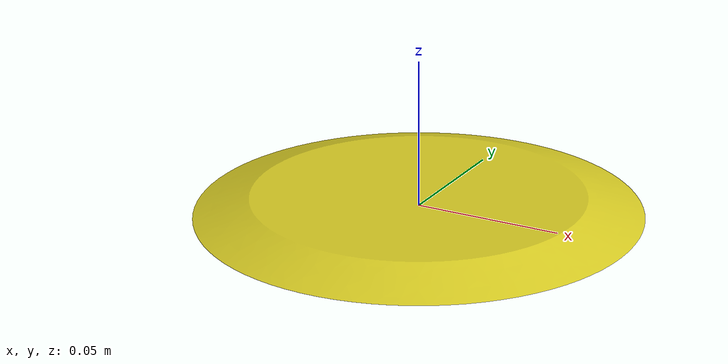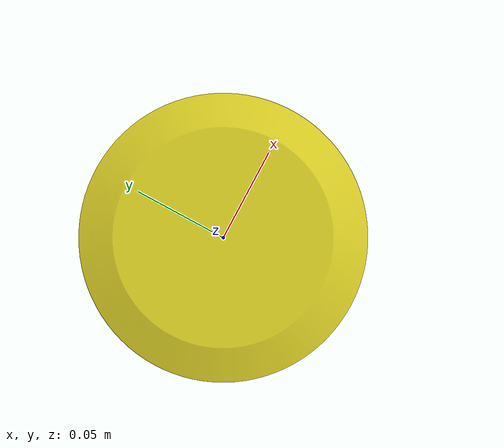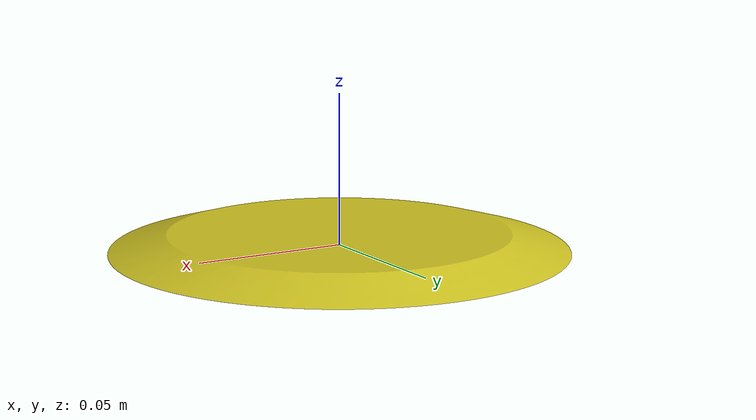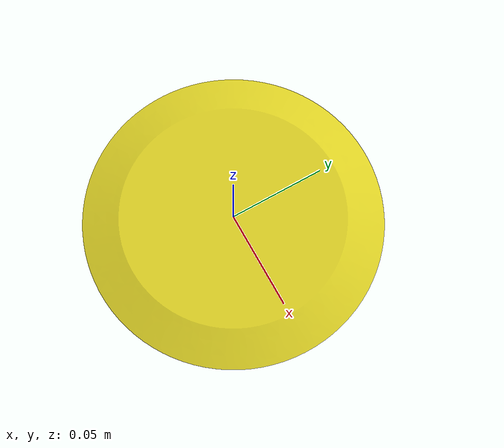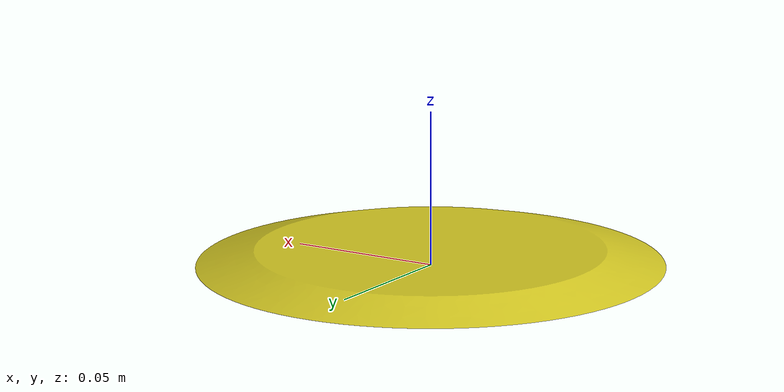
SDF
<?xml version="1.0" ?>
<sdf version="1.5">
  <model name="disc">
    <static>true</static>
    <link name="link">
      <collision name="collision">
        <pose>0 0 0 0 0 0</pose>
        <geometry>
          <mesh>
            <uri>model://disc/disc.stl</uri>
            <scale>0.001 0.001 0.001</scale>
          </mesh>
        </geometry>
          <surface>
            <friction>
              <ode>
                <mu>0.95</mu>
                <mu2>0.95</mu2>
              </ode>
            </friction>
          </surface>
      </collision>
      <visual name="visual">
        <pose>0 0 0 0 0 0</pose>
        <geometry>
          <mesh>
            <uri>model://disc/disc.stl</uri>
            <scale>0.001 0.001 0.001</scale>
          </mesh>
        </geometry>
        <material><script><name>Gazebo/Yellow</name></script></material>
      </visual>
    </link>
  </model>
</sdf>
